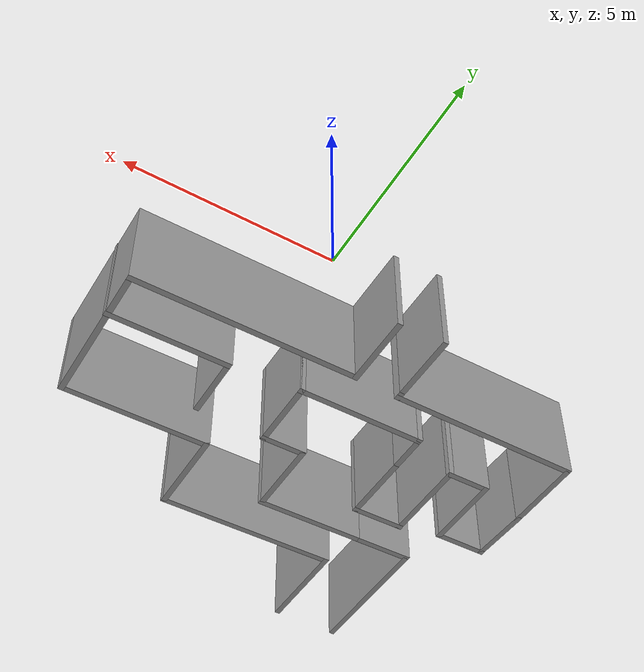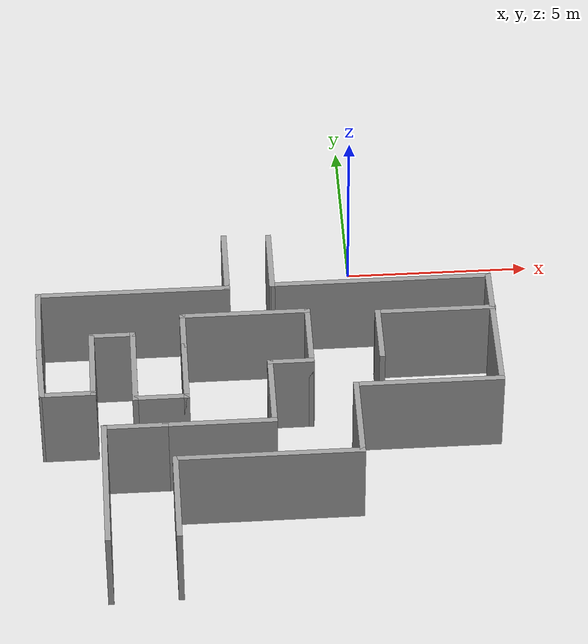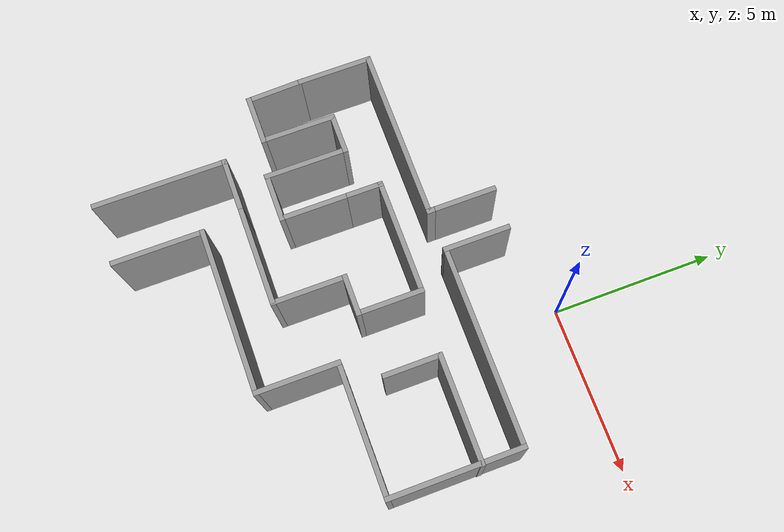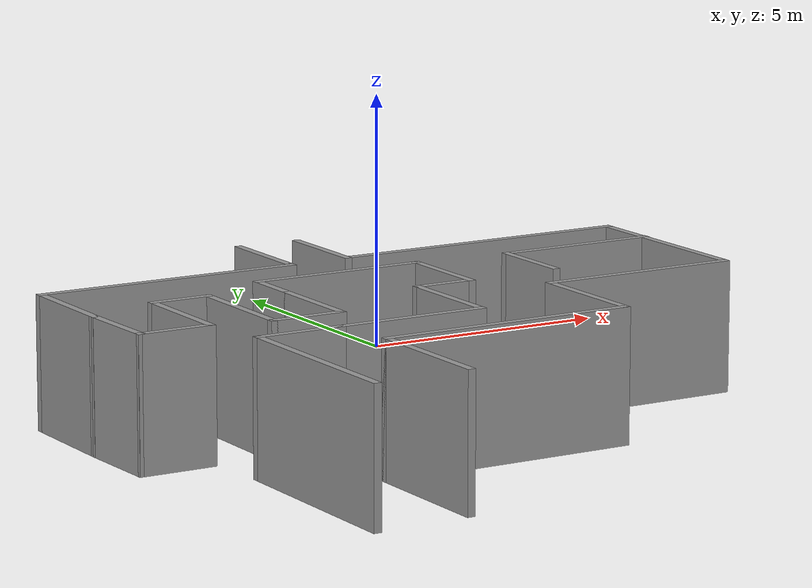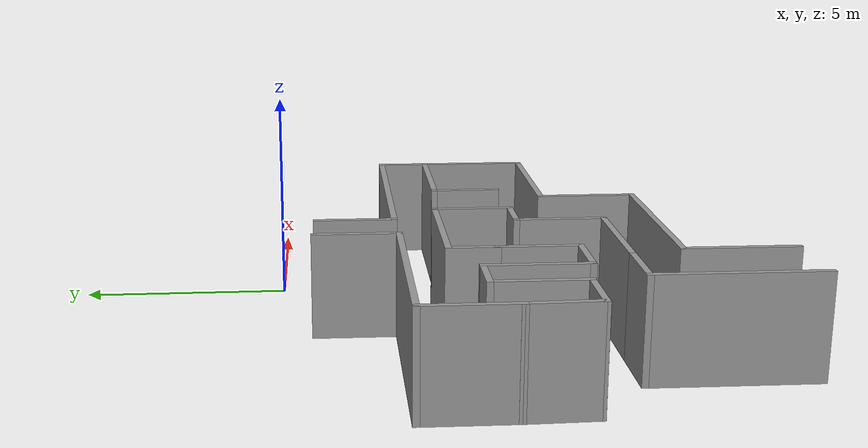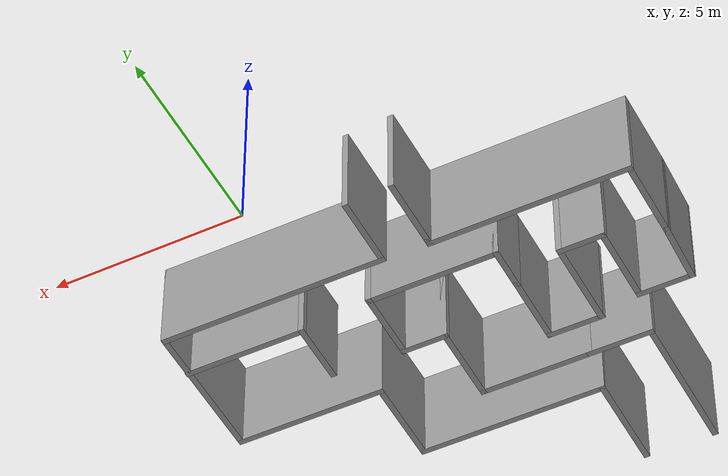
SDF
<?xml version='1.0'?>
<sdf version='1.6'>
  <model name='Tricky_Maze'>
    <pose frame=''>-2.48515 -6.17008 0 0 -0 0</pose>
    <link name='Wall_0'>
      <collision name='Wall_0_Collision'>
        <geometry>
          <box>
            <size>2 0.15 2.5</size>
          </box>
        </geometry>
        <pose frame=''>0 0 1.25 0 -0 0</pose>
      </collision>
      <visual name='Wall_0_Visual'>
        <pose frame=''>0 0 1.25 0 -0 0</pose>
        <geometry>
          <box>
            <size>2 0.15 2.5</size>
          </box>
        </geometry>
        <material>
          <script>
            <uri>file://media/materials/scripts/gazebo.material</uri>
            <name>Gazebo/Grey</name>
          </script>
          <ambient>1 1 1 1</ambient>
        </material>
      </visual>
      <pose frame=''>0.225145 4.39508 0 0 0 -1.5708</pose>
    </link>
    <link name='Wall_12'>
      <collision name='Wall_12_Collision'>
        <geometry>
          <box>
            <size>2 0.15 2.5</size>
          </box>
        </geometry>
        <pose frame=''>0 0 1.25 0 -0 0</pose>
      </collision>
      <visual name='Wall_12_Visual'>
        <pose frame=''>0 0 1.25 0 -0 0</pose>
        <geometry>
          <box>
            <size>2 0.15 2.5</size>
          </box>
        </geometry>
        <material>
          <script>
            <uri>file://media/materials/scripts/gazebo.material</uri>
            <name>Gazebo/Grey</name>
          </script>
          <ambient>1 1 1 1</ambient>
        </material>
      </visual>
      <pose frame=''>-0.990498 4.45 0 0 0 -1.5708</pose>
    </link>
    <link name='Wall_13'>
      <collision name='Wall_13_Collision'>
        <geometry>
          <box>
            <size>0.25 0.15 2.5</size>
          </box>
        </geometry>
        <pose frame=''>0 0 1.25 0 -0 0</pose>
      </collision>
      <visual name='Wall_13_Visual'>
        <pose frame=''>0 0 1.25 0 -0 0</pose>
        <geometry>
          <box>
            <size>0.25 0.15 2.5</size>
          </box>
        </geometry>
        <material>
          <script>
            <uri>file://media/materials/scripts/gazebo.material</uri>
            <name>Gazebo/Grey</name>
          </script>
          <ambient>1 1 1 1</ambient>
        </material>
      </visual>
      <pose frame=''>-0.990498 3.475 0 0 0 -1.5708</pose>
    </link>
    <link name='Wall_14'>
      <collision name='Wall_14_Collision'>
        <geometry>
          <box>
            <size>5.25 0.15 2.5</size>
          </box>
        </geometry>
        <pose frame=''>0 0 1.25 0 -0 0</pose>
      </collision>
      <visual name='Wall_14_Visual'>
        <pose frame=''>0 0 1.25 0 -0 0</pose>
        <geometry>
          <box>
            <size>5.25 0.15 2.5</size>
          </box>
        </geometry>
        <material>
          <script>
            <uri>file://media/materials/scripts/gazebo.material</uri>
            <name>Gazebo/Grey</name>
          </script>
          <ambient>1 1 1 1</ambient>
        </material>
      </visual>
      <pose frame=''>-3.5405 3.425 0 0 -0 3.14159</pose>
    </link>
    <link name='Wall_15'>
      <collision name='Wall_15_Collision'>
        <geometry>
          <box>
            <size>2.25 0.15 2.5</size>
          </box>
        </geometry>
        <pose frame=''>0 0 1.25 0 -0 0</pose>
      </collision>
      <visual name='Wall_15_Visual'>
        <pose frame=''>0 0 1.25 0 -0 0</pose>
        <geometry>
          <box>
            <size>2.25 0.15 2.5</size>
          </box>
        </geometry>
        <material>
          <script>
            <uri>file://media/materials/scripts/gazebo.material</uri>
            <name>Gazebo/Grey</name>
          </script>
          <ambient>1 1 1 1</ambient>
        </material>
      </visual>
      <pose frame=''>-6.0905 2.375 0 0 0 -1.5708</pose>
    </link>
    <link name='Wall_17'>
      <collision name='Wall_17_Collision'>
        <geometry>
          <box>
            <size>1.25 0.15 2.5</size>
          </box>
        </geometry>
        <pose frame=''>0 0 1.25 0 -0 0</pose>
      </collision>
      <visual name='Wall_17_Visual'>
        <pose frame=''>0 0 1.25 0 -0 0</pose>
        <geometry>
          <box>
            <size>1.25 0.15 2.5</size>
          </box>
        </geometry>
        <material>
          <script>
            <uri>file://media/materials/scripts/gazebo.material</uri>
            <name>Gazebo/Grey</name>
          </script>
          <ambient>1 1 1 1</ambient>
        </material>
      </visual>
      <pose frame=''>-2.2405 1.875 0 0 -0 1.5708</pose>
    </link>
    <link name='Wall_18'>
      <collision name='Wall_18_Collision'>
        <geometry>
          <box>
            <size>3.5 0.15 2.5</size>
          </box>
        </geometry>
        <pose frame=''>0 0 1.25 0 -0 0</pose>
      </collision>
      <visual name='Wall_18_Visual'>
        <pose frame=''>0 0 1.25 0 -0 0</pose>
        <geometry>
          <box>
            <size>3.5 0.15 2.5</size>
          </box>
        </geometry>
        <material>
          <script>
            <uri>file://media/materials/scripts/gazebo.material</uri>
            <name>Gazebo/Grey</name>
          </script>
          <ambient>1 1 1 1</ambient>
        </material>
      </visual>
      <pose frame=''>-0.565498 2.425 0 0 -0 0</pose>
    </link>
    <link name='Wall_19'>
      <collision name='Wall_19_Collision'>
        <geometry>
          <box>
            <size>2 0.15 2.5</size>
          </box>
        </geometry>
        <pose frame=''>0 0 1.25 0 -0 0</pose>
      </collision>
      <visual name='Wall_19_Visual'>
        <pose frame=''>0 0 1.25 0 -0 0</pose>
        <geometry>
          <box>
            <size>2 0.15 2.5</size>
          </box>
        </geometry>
        <material>
          <script>
            <uri>file://media/materials/scripts/gazebo.material</uri>
            <name>Gazebo/Grey</name>
          </script>
          <ambient>1 1 1 1</ambient>
        </material>
      </visual>
      <pose frame=''>1.1095 1.5 0 0 0 -1.5708</pose>
    </link>
    <link name='Wall_2'>
      <collision name='Wall_2_Collision'>
        <geometry>
          <box>
            <size>6 0.15 2.5</size>
          </box>
        </geometry>
        <pose frame=''>0 0 1.25 0 -0 0</pose>
      </collision>
      <visual name='Wall_2_Visual'>
        <pose frame=''>0 0 1.25 0 -0 0</pose>
        <geometry>
          <box>
            <size>6 0.15 2.5</size>
          </box>
        </geometry>
        <material>
          <script>
            <uri>file://media/materials/scripts/gazebo.material</uri>
            <name>Gazebo/Grey</name>
          </script>
          <ambient>1 1 1 1</ambient>
        </material>
      </visual>
      <pose frame=''>3.15015 3.47008 0 0 -0 0</pose>
    </link>
    <link name='Wall_20'>
      <collision name='Wall_20_Collision'>
        <geometry>
          <box>
            <size>1.25 0.15 2.5</size>
          </box>
        </geometry>
        <pose frame=''>0 0 1.25 0 -0 0</pose>
      </collision>
      <visual name='Wall_20_Visual'>
        <pose frame=''>0 0 1.25 0 -0 0</pose>
        <geometry>
          <box>
            <size>1.25 0.15 2.5</size>
          </box>
        </geometry>
        <material>
          <script>
            <uri>file://media/materials/scripts/gazebo.material</uri>
            <name>Gazebo/Grey</name>
          </script>
          <ambient>1 1 1 1</ambient>
        </material>
      </visual>
      <pose frame=''>0.559502 0.575 0 0 -0 3.14159</pose>
    </link>
    <link name='Wall_21'>
      <collision name='Wall_21_Collision'>
        <geometry>
          <box>
            <size>2.25 0.15 2.5</size>
          </box>
        </geometry>
        <pose frame=''>0 0 1.25 0 -0 0</pose>
      </collision>
      <visual name='Wall_21_Visual'>
        <pose frame=''>0 0 1.25 0 -0 0</pose>
        <geometry>
          <box>
            <size>2.25 0.15 2.5</size>
          </box>
        </geometry>
        <material>
          <script>
            <uri>file://media/materials/scripts/gazebo.material</uri>
            <name>Gazebo/Grey</name>
          </script>
          <ambient>1 1 1 1</ambient>
        </material>
      </visual>
      <pose frame=''>0.009502 -0.475 0 0 0 -1.5708</pose>
    </link>
    <link name='Wall_22'>
      <collision name='Wall_22_Collision'>
        <geometry>
          <box>
            <size>3 0.15 2.5</size>
          </box>
        </geometry>
        <pose frame=''>0 0 1.25 0 -0 0</pose>
      </collision>
      <visual name='Wall_22_Visual'>
        <pose frame=''>0 0 1.25 0 -0 0</pose>
        <geometry>
          <box>
            <size>3 0.15 2.5</size>
          </box>
        </geometry>
        <material>
          <script>
            <uri>file://media/materials/scripts/gazebo.material</uri>
            <name>Gazebo/Grey</name>
          </script>
          <ambient>1 1 1 1</ambient>
        </material>
      </visual>
      <pose frame=''>-1.4155 -1.525 0 0 -0 3.14159</pose>
    </link>
    <link name='Wall_25'>
      <collision name='Wall_25_Collision'>
        <geometry>
          <box>
            <size>1.75 0.15 2.5</size>
          </box>
        </geometry>
        <pose frame=''>0 0 1.25 0 -0 0</pose>
      </collision>
      <visual name='Wall_25_Visual'>
        <pose frame=''>0 0 1.25 0 -0 0</pose>
        <geometry>
          <box>
            <size>1.75 0.15 2.5</size>
          </box>
        </geometry>
        <material>
          <script>
            <uri>file://media/materials/scripts/gazebo.material</uri>
            <name>Gazebo/Grey</name>
          </script>
          <ambient>1 1 1 1</ambient>
        </material>
      </visual>
      <pose frame=''>-3.6405 -1.525 0 0 -0 3.14159</pose>
    </link>
    <link name='Wall_26'>
      <collision name='Wall_26_Collision'>
        <geometry>
          <box>
            <size>4 0.15 2.5</size>
          </box>
        </geometry>
        <pose frame=''>0 0 1.25 0 -0 0</pose>
      </collision>
      <visual name='Wall_26_Visual'>
        <pose frame=''>0 0 1.25 0 -0 0</pose>
        <geometry>
          <box>
            <size>4 0.15 2.5</size>
          </box>
        </geometry>
        <material>
          <script>
            <uri>file://media/materials/scripts/gazebo.material</uri>
            <name>Gazebo/Grey</name>
          </script>
          <ambient>1 1 1 1</ambient>
        </material>
      </visual>
      <pose frame=''>-4.4405 -3.45 0 0 0 -1.5708</pose>
    </link>
    <link name='Wall_28'>
      <collision name='Wall_28_Collision'>
        <geometry>
          <box>
            <size>3.25 0.15 2.5</size>
          </box>
        </geometry>
        <pose frame=''>0 0 1.25 0 -0 0</pose>
      </collision>
      <visual name='Wall_28_Visual'>
        <pose frame=''>0 0 1.25 0 -0 0</pose>
        <geometry>
          <box>
            <size>3.25 0.15 2.5</size>
          </box>
        </geometry>
        <material>
          <script>
            <uri>file://media/materials/scripts/gazebo.material</uri>
            <name>Gazebo/Grey</name>
          </script>
          <ambient>1 1 1 1</ambient>
        </material>
      </visual>
      <pose frame=''>4.5428 2.26353 0 0 -0 0</pose>
    </link>
    <link name='Wall_3'>
      <collision name='Wall_3_Collision'>
        <geometry>
          <box>
            <size>4 0.15 2.5</size>
          </box>
        </geometry>
        <pose frame=''>0 0 1.25 0 -0 0</pose>
      </collision>
      <visual name='Wall_3_Visual'>
        <pose frame=''>0 0 1.25 0 -0 0</pose>
        <geometry>
          <box>
            <size>4 0.15 2.5</size>
          </box>
        </geometry>
        <material>
          <script>
            <uri>file://media/materials/scripts/gazebo.material</uri>
            <name>Gazebo/Grey</name>
          </script>
          <ambient>1 1 1 1</ambient>
        </material>
      </visual>
      <pose frame=''>6.07515 1.54508 0 0 0 -1.5708</pose>
    </link>
    <link name='Wall_30'>
      <collision name='Wall_30_Collision'>
        <geometry>
          <box>
            <size>1.75 0.15 2.5</size>
          </box>
        </geometry>
        <pose frame=''>0 0 1.25 0 -0 0</pose>
      </collision>
      <visual name='Wall_30_Visual'>
        <pose frame=''>0 0 1.25 0 -0 0</pose>
        <geometry>
          <box>
            <size>1.75 0.15 2.5</size>
          </box>
        </geometry>
        <material>
          <script>
            <uri>file://media/materials/scripts/gazebo.material</uri>
            <name>Gazebo/Grey</name>
          </script>
          <ambient>1 1 1 1</ambient>
        </material>
      </visual>
      <pose frame=''>2.9928 1.46353 0 0 0 -1.5708</pose>
    </link>
    <link name='Wall_32'>
      <collision name='Wall_32_Collision'>
        <geometry>
          <box>
            <size>2 0.15 2.5</size>
          </box>
        </geometry>
        <pose frame=''>0 0 1.25 0 -0 0</pose>
      </collision>
      <visual name='Wall_32_Visual'>
        <pose frame=''>0 0 1.25 0 -0 0</pose>
        <geometry>
          <box>
            <size>2 0.15 2.5</size>
          </box>
        </geometry>
        <material>
          <script>
            <uri>file://media/materials/scripts/gazebo.material</uri>
            <name>Gazebo/Grey</name>
          </script>
          <ambient>1 1 1 1</ambient>
        </material>
      </visual>
      <pose frame=''>-2.2405 0.4 0 0 0 -1.5708</pose>
    </link>
    <link name='Wall_33'>
      <collision name='Wall_33_Collision'>
        <geometry>
          <box>
            <size>1.5 0.15 2.5</size>
          </box>
        </geometry>
        <pose frame=''>0 0 1.25 0 -0 0</pose>
      </collision>
      <visual name='Wall_33_Visual'>
        <pose frame=''>0 0 1.25 0 -0 0</pose>
        <geometry>
          <box>
            <size>1.5 0.15 2.5</size>
          </box>
        </geometry>
        <material>
          <script>
            <uri>file://media/materials/scripts/gazebo.material</uri>
            <name>Gazebo/Grey</name>
          </script>
          <ambient>1 1 1 1</ambient>
        </material>
      </visual>
      <pose frame=''>-2.9155 -0.525 0 0 -0 3.14159</pose>
    </link>
    <link name='Wall_34'>
      <collision name='Wall_34_Collision'>
        <geometry>
          <box>
            <size>2.5 0.15 2.5</size>
          </box>
        </geometry>
        <pose frame=''>0 0 1.25 0 -0 0</pose>
      </collision>
      <visual name='Wall_34_Visual'>
        <pose frame=''>0 0 1.25 0 -0 0</pose>
        <geometry>
          <box>
            <size>2.5 0.15 2.5</size>
          </box>
        </geometry>
        <material>
          <script>
            <uri>file://media/materials/scripts/gazebo.material</uri>
            <name>Gazebo/Grey</name>
          </script>
          <ambient>1 1 1 1</ambient>
        </material>
      </visual>
      <pose frame=''>-3.5905 0.65 0 0 -0 1.5708</pose>
    </link>
    <link name='Wall_35'>
      <collision name='Wall_35_Collision'>
        <geometry>
          <box>
            <size>1.25 0.15 2.5</size>
          </box>
        </geometry>
        <pose frame=''>0 0 1.25 0 -0 0</pose>
      </collision>
      <visual name='Wall_35_Visual'>
        <pose frame=''>0 0 1.25 0 -0 0</pose>
        <geometry>
          <box>
            <size>1.25 0.15 2.5</size>
          </box>
        </geometry>
        <material>
          <script>
            <uri>file://media/materials/scripts/gazebo.material</uri>
            <name>Gazebo/Grey</name>
          </script>
          <ambient>1 1 1 1</ambient>
        </material>
      </visual>
      <pose frame=''>-4.1405 1.825 0 0 -0 3.14159</pose>
    </link>
    <link name='Wall_36'>
      <collision name='Wall_36_Collision'>
        <geometry>
          <box>
            <size>2.25 0.15 2.5</size>
          </box>
        </geometry>
        <pose frame=''>0 0 1.25 0 -0 0</pose>
      </collision>
      <visual name='Wall_36_Visual'>
        <pose frame=''>0 0 1.25 0 -0 0</pose>
        <geometry>
          <box>
            <size>2.25 0.15 2.5</size>
          </box>
        </geometry>
        <material>
          <script>
            <uri>file://media/materials/scripts/gazebo.material</uri>
            <name>Gazebo/Grey</name>
          </script>
          <ambient>1 1 1 1</ambient>
        </material>
      </visual>
      <pose frame=''>-4.6905 0.775 0 0 0 -1.5708</pose>
    </link>
    <link name='Wall_37'>
      <collision name='Wall_37_Collision'>
        <geometry>
          <box>
            <size>1.5 0.15 2.5</size>
          </box>
        </geometry>
        <pose frame=''>0 0 1.25 0 -0 0</pose>
      </collision>
      <visual name='Wall_37_Visual'>
        <pose frame=''>0 0 1.25 0 -0 0</pose>
        <geometry>
          <box>
            <size>1.5 0.15 2.5</size>
          </box>
        </geometry>
        <material>
          <script>
            <uri>file://media/materials/scripts/gazebo.material</uri>
            <name>Gazebo/Grey</name>
          </script>
          <ambient>1 1 1 1</ambient>
        </material>
      </visual>
      <pose frame=''>-5.3655 -0.275 0 0 -0 3.14159</pose>
    </link>
    <link name='Wall_38'>
      <collision name='Wall_38_Collision'>
        <geometry>
          <box>
            <size>1.75078 0.15 2.5</size>
          </box>
        </geometry>
        <pose frame=''>0 0 1.25 0 -0 0</pose>
      </collision>
      <visual name='Wall_38_Visual'>
        <pose frame=''>0 0 1.25 0 -0 0</pose>
        <geometry>
          <box>
            <size>1.75078 0.15 2.5</size>
          </box>
        </geometry>
        <material>
          <script>
            <uri>file://media/materials/scripts/gazebo.material</uri>
            <name>Gazebo/Grey</name>
          </script>
          <ambient>1 1 1 1</ambient>
        </material>
      </visual>
      <pose frame=''>-6.0655 0.525 0 0 -0 1.60204</pose>
    </link>
    <link name='Wall_4'>
      <collision name='Wall_4_Collision'>
        <geometry>
          <box>
            <size>4 0.15 2.5</size>
          </box>
        </geometry>
        <pose frame=''>0 0 1.25 0 -0 0</pose>
      </collision>
      <visual name='Wall_4_Visual'>
        <pose frame=''>0 0 1.25 0 -0 0</pose>
        <geometry>
          <box>
            <size>4 0.15 2.5</size>
          </box>
        </geometry>
        <material>
          <script>
            <uri>file://media/materials/scripts/gazebo.material</uri>
            <name>Gazebo/Grey</name>
          </script>
          <ambient>1 1 1 1</ambient>
        </material>
      </visual>
      <pose frame=''>4.15015 -0.379924 0 0 -0 3.14159</pose>
    </link>
    <link name='Wall_5'>
      <collision name='Wall_5_Collision'>
        <geometry>
          <box>
            <size>2.5 0.15 2.5</size>
          </box>
        </geometry>
        <pose frame=''>0 0 1.25 0 -0 0</pose>
      </collision>
      <visual name='Wall_5_Visual'>
        <pose frame=''>0 0 1.25 0 -0 0</pose>
        <geometry>
          <box>
            <size>2.5 0.15 2.5</size>
          </box>
        </geometry>
        <material>
          <script>
            <uri>file://media/materials/scripts/gazebo.material</uri>
            <name>Gazebo/Grey</name>
          </script>
          <ambient>1 1 1 1</ambient>
        </material>
      </visual>
      <pose frame=''>2.22514 -1.55492 0 0 0 -1.5708</pose>
    </link>
    <link name='Wall_6'>
      <collision name='Wall_6_Collision'>
        <geometry>
          <box>
            <size>5 0.15 2.5</size>
          </box>
        </geometry>
        <pose frame=''>0 0 1.25 0 -0 0</pose>
      </collision>
      <visual name='Wall_6_Visual'>
        <pose frame=''>0 0 1.25 0 -0 0</pose>
        <geometry>
          <box>
            <size>5 0.15 2.5</size>
          </box>
        </geometry>
        <material>
          <script>
            <uri>file://media/materials/scripts/gazebo.material</uri>
            <name>Gazebo/Grey</name>
          </script>
          <ambient>1 1 1 1</ambient>
        </material>
      </visual>
      <pose frame=''>-0.199855 -2.72992 0 0 -0 3.14159</pose>
    </link>
    <link name='Wall_7'>
      <collision name='Wall_7_Collision'>
        <geometry>
          <box>
            <size>2.75 0.15 2.5</size>
          </box>
        </geometry>
        <pose frame=''>0 0 1.25 0 -0 0</pose>
      </collision>
      <visual name='Wall_7_Visual'>
        <pose frame=''>0 0 1.25 0 -0 0</pose>
        <geometry>
          <box>
            <size>2.75 0.15 2.5</size>
          </box>
        </geometry>
        <material>
          <script>
            <uri>file://media/materials/scripts/gazebo.material</uri>
            <name>Gazebo/Grey</name>
          </script>
          <ambient>1 1 1 1</ambient>
        </material>
      </visual>
      <pose frame=''>-2.62486 -4.02992 0 0 0 -1.5708</pose>
    </link>
    <static>1</static>
  </model>
</sdf>
